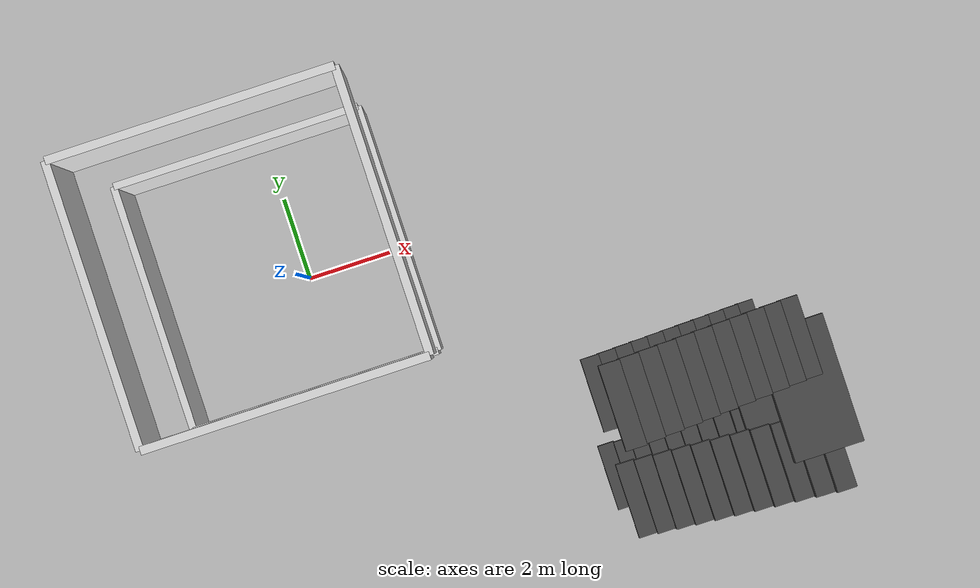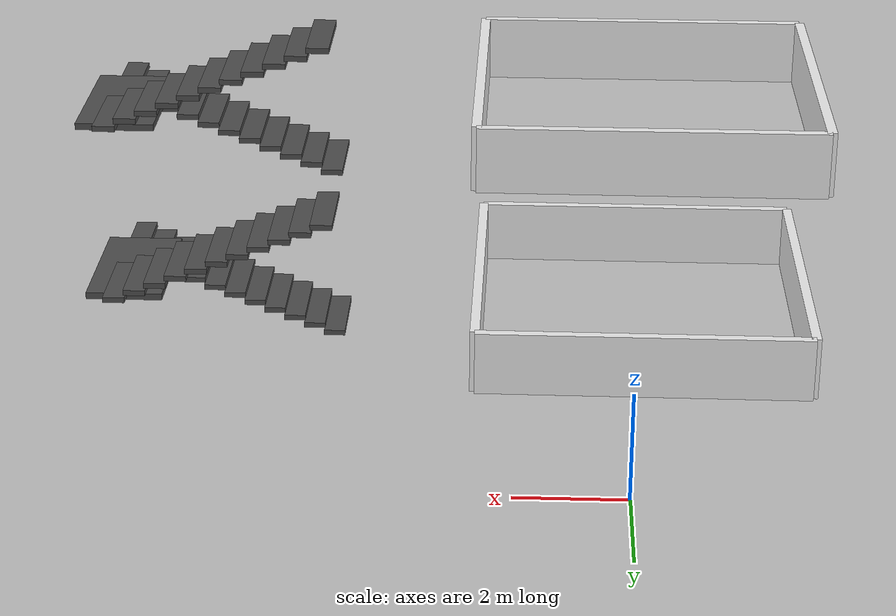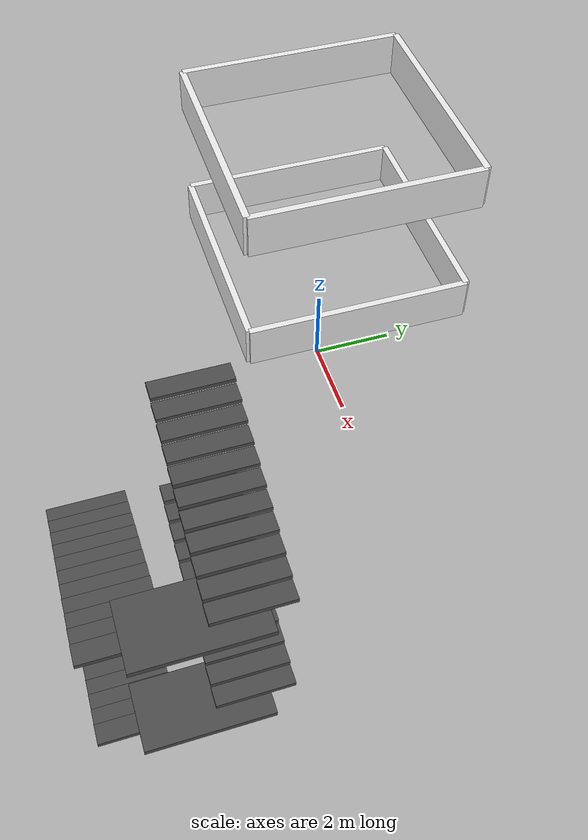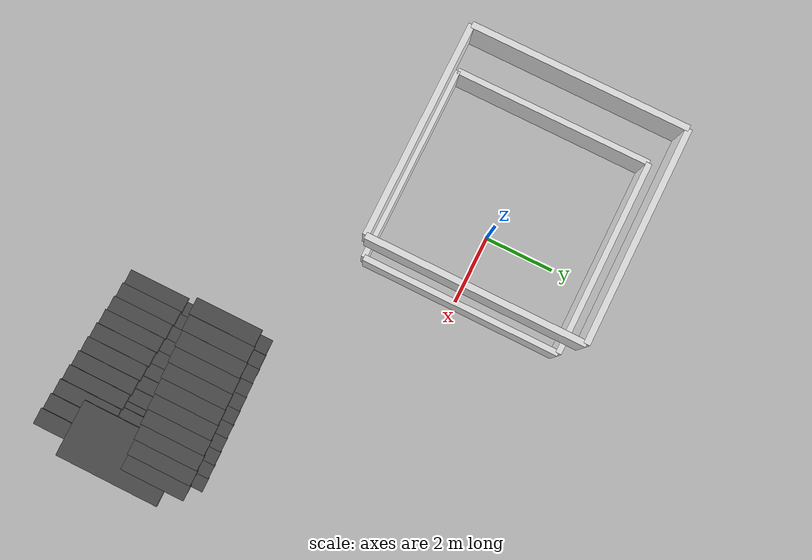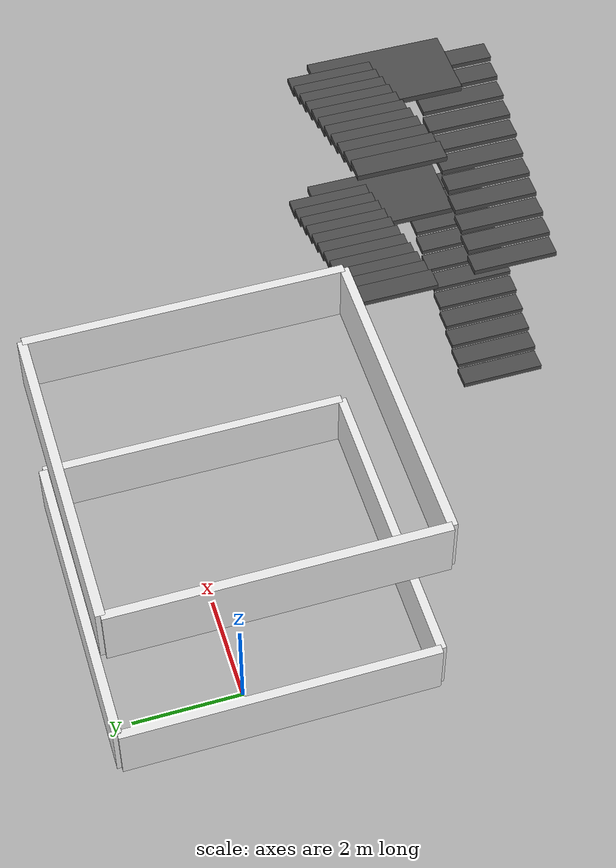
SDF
<sdf version="1.7">
 <world name="default">
  <model name="building_core">
   <static>1</static>
   <link name="pL2N">
    <pose>0 2.575 3.8 0 0 0</pose>
    <collision name="c"><geometry><box><size>5.15 0.15 1</size></box></geometry></collision>
    <visual name="v">
     <geometry><box><size>5.15 0.15 1</size></box></geometry>
     <material>
      <script><uri>file://media/materials/scripts/Gazebo.material</uri><name>Gazebo/White</name></script>
     </material>
    </visual>
   </link>
   <link name="pL2S">
    <pose>0 -2.575 3.8 0 0 0</pose>
    <collision name="c"><geometry><box><size>5.15 0.15 1</size></box></geometry></collision>
    <visual name="v">
     <geometry><box><size>5.15 0.15 1</size></box></geometry>
     <material>
      <script><uri>file://media/materials/scripts/Gazebo.material</uri><name>Gazebo/White</name></script>
     </material>
    </visual>
   </link>
   <link name="pL2E">
    <pose>2.575 0 3.8 0 0 0</pose>
    <collision name="c"><geometry><box><size>0.15 5.15 1</size></box></geometry></collision>
    <visual name="v">
     <geometry><box><size>0.15 5.15 1</size></box></geometry>
     <material>
      <script><uri>file://media/materials/scripts/Gazebo.material</uri><name>Gazebo/White</name></script>
     </material>
    </visual>
   </link>
   <link name="pL2W">
    <pose>-2.575 0 3.8 0 0 0</pose>
    <collision name="c"><geometry><box><size>0.15 5.15 1</size></box></geometry></collision>
    <visual name="v">
     <geometry><box><size>0.15 5.15 1</size></box></geometry>
     <material>
      <script><uri>file://media/materials/scripts/Gazebo.material</uri><name>Gazebo/White</name></script>
     </material>
    </visual>
   </link>
   <link name="pL3N">
    <pose>0 2.575 7.1 0 0 0</pose>
    <collision name="c"><geometry><box><size>5.15 0.15 1</size></box></geometry></collision>
    <visual name="v">
     <geometry><box><size>5.15 0.15 1</size></box></geometry>
     <material>
      <script><uri>file://media/materials/scripts/Gazebo.material</uri><name>Gazebo/White</name></script>
     </material>
    </visual>
   </link>
   <link name="pL3S">
    <pose>0 -2.575 7.1 0 0 0</pose>
    <collision name="c"><geometry><box><size>5.15 0.15 1</size></box></geometry></collision>
    <visual name="v">
     <geometry><box><size>5.15 0.15 1</size></box></geometry>
     <material>
      <script><uri>file://media/materials/scripts/Gazebo.material</uri><name>Gazebo/White</name></script>
     </material>
    </visual>
   </link>
   <link name="pL3E">
    <pose>2.575 0 7.1 0 0 0</pose>
    <collision name="c"><geometry><box><size>0.15 5.15 1</size></box></geometry></collision>
    <visual name="v">
     <geometry><box><size>0.15 5.15 1</size></box></geometry>
     <material>
      <script><uri>file://media/materials/scripts/Gazebo.material</uri><name>Gazebo/White</name></script>
     </material>
    </visual>
   </link>
   <link name="pL3W">
    <pose>-2.575 0 7.1 0 0 0</pose>
    <collision name="c"><geometry><box><size>0.15 5.15 1</size></box></geometry></collision>
    <visual name="v">
     <geometry><box><size>0.15 5.15 1</size></box></geometry>
     <material>
      <script><uri>file://media/materials/scripts/Gazebo.material</uri><name>Gazebo/White</name></script>
     </material>
    </visual>
   </link>
   <link name="st0a0">
    <pose>5.5 -6.8 0.15 0 0 0</pose>
    <collision name="c"><geometry><box><size>0.4 1.6 0.1</size></box></geometry></collision>
    <visual name="v">
     <geometry><box><size>0.4 1.6 0.1</size></box></geometry>
     <material>
      <script><uri>file://media/materials/scripts/Gazebo.material</uri><name>Gazebo/DarkGrey</name></script>
     </material>
    </visual>
   </link>
   <link name="st0a1">
    <pose>5.88 -6.8 0.3 0 0 0</pose>
    <collision name="c"><geometry><box><size>0.4 1.6 0.1</size></box></geometry></collision>
    <visual name="v">
     <geometry><box><size>0.4 1.6 0.1</size></box></geometry>
     <material>
      <script><uri>file://media/materials/scripts/Gazebo.material</uri><name>Gazebo/DarkGrey</name></script>
     </material>
    </visual>
   </link>
   <link name="st0a2">
    <pose>6.26 -6.8 0.45 0 0 0</pose>
    <collision name="c"><geometry><box><size>0.4 1.6 0.1</size></box></geometry></collision>
    <visual name="v">
     <geometry><box><size>0.4 1.6 0.1</size></box></geometry>
     <material>
      <script><uri>file://media/materials/scripts/Gazebo.material</uri><name>Gazebo/DarkGrey</name></script>
     </material>
    </visual>
   </link>
   <link name="st0a3">
    <pose>6.64 -6.8 0.6 0 0 0</pose>
    <collision name="c"><geometry><box><size>0.4 1.6 0.1</size></box></geometry></collision>
    <visual name="v">
     <geometry><box><size>0.4 1.6 0.1</size></box></geometry>
     <material>
      <script><uri>file://media/materials/scripts/Gazebo.material</uri><name>Gazebo/DarkGrey</name></script>
     </material>
    </visual>
   </link>
   <link name="st0a4">
    <pose>7.02 -6.8 0.75 0 0 0</pose>
    <collision name="c"><geometry><box><size>0.4 1.6 0.1</size></box></geometry></collision>
    <visual name="v">
     <geometry><box><size>0.4 1.6 0.1</size></box></geometry>
     <material>
      <script><uri>file://media/materials/scripts/Gazebo.material</uri><name>Gazebo/DarkGrey</name></script>
     </material>
    </visual>
   </link>
   <link name="st0a5">
    <pose>7.4 -6.8 0.9 0 0 0</pose>
    <collision name="c"><geometry><box><size>0.4 1.6 0.1</size></box></geometry></collision>
    <visual name="v">
     <geometry><box><size>0.4 1.6 0.1</size></box></geometry>
     <material>
      <script><uri>file://media/materials/scripts/Gazebo.material</uri><name>Gazebo/DarkGrey</name></script>
     </material>
    </visual>
   </link>
   <link name="st0a6">
    <pose>7.78 -6.8 1.05 0 0 0</pose>
    <collision name="c"><geometry><box><size>0.4 1.6 0.1</size></box></geometry></collision>
    <visual name="v">
     <geometry><box><size>0.4 1.6 0.1</size></box></geometry>
     <material>
      <script><uri>file://media/materials/scripts/Gazebo.material</uri><name>Gazebo/DarkGrey</name></script>
     </material>
    </visual>
   </link>
   <link name="st0a7">
    <pose>8.16 -6.8 1.2 0 0 0</pose>
    <collision name="c"><geometry><box><size>0.4 1.6 0.1</size></box></geometry></collision>
    <visual name="v">
     <geometry><box><size>0.4 1.6 0.1</size></box></geometry>
     <material>
      <script><uri>file://media/materials/scripts/Gazebo.material</uri><name>Gazebo/DarkGrey</name></script>
     </material>
    </visual>
   </link>
   <link name="st0a8">
    <pose>8.54 -6.8 1.35 0 0 0</pose>
    <collision name="c"><geometry><box><size>0.4 1.6 0.1</size></box></geometry></collision>
    <visual name="v">
     <geometry><box><size>0.4 1.6 0.1</size></box></geometry>
     <material>
      <script><uri>file://media/materials/scripts/Gazebo.material</uri><name>Gazebo/DarkGrey</name></script>
     </material>
    </visual>
   </link>
   <link name="st0a9">
    <pose>8.92 -6.8 1.5 0 0 0</pose>
    <collision name="c"><geometry><box><size>0.4 1.6 0.1</size></box></geometry></collision>
    <visual name="v">
     <geometry><box><size>0.4 1.6 0.1</size></box></geometry>
     <material>
      <script><uri>file://media/materials/scripts/Gazebo.material</uri><name>Gazebo/DarkGrey</name></script>
     </material>
    </visual>
   </link>
   <link name="st0a10">
    <pose>9.3 -6.8 1.65 0 0 0</pose>
    <collision name="c"><geometry><box><size>0.4 1.6 0.1</size></box></geometry></collision>
    <visual name="v">
     <geometry><box><size>0.4 1.6 0.1</size></box></geometry>
     <material>
      <script><uri>file://media/materials/scripts/Gazebo.material</uri><name>Gazebo/DarkGrey</name></script>
     </material>
    </visual>
   </link>
   <link name="st0land">
    <pose>9.2 -5.5 1.65 0 0 0</pose>
    <collision name="c"><geometry><box><size>1.4 2.6 0.12</size></box></geometry></collision>
    <visual name="v">
     <geometry><box><size>1.4 2.6 0.12</size></box></geometry>
     <material>
      <script><uri>file://media/materials/scripts/Gazebo.material</uri><name>Gazebo/DarkGrey</name></script>
     </material>
    </visual>
   </link>
   <link name="st0b0">
    <pose>9.3 -4.5 1.8 0 0 0</pose>
    <collision name="c"><geometry><box><size>0.4 1.6 0.1</size></box></geometry></collision>
    <visual name="v">
     <geometry><box><size>0.4 1.6 0.1</size></box></geometry>
     <material>
      <script><uri>file://media/materials/scripts/Gazebo.material</uri><name>Gazebo/DarkGrey</name></script>
     </material>
    </visual>
   </link>
   <link name="st0b1">
    <pose>8.92 -4.5 1.95 0 0 0</pose>
    <collision name="c"><geometry><box><size>0.4 1.6 0.1</size></box></geometry></collision>
    <visual name="v">
     <geometry><box><size>0.4 1.6 0.1</size></box></geometry>
     <material>
      <script><uri>file://media/materials/scripts/Gazebo.material</uri><name>Gazebo/DarkGrey</name></script>
     </material>
    </visual>
   </link>
   <link name="st0b2">
    <pose>8.54 -4.5 2.1 0 0 0</pose>
    <collision name="c"><geometry><box><size>0.4 1.6 0.1</size></box></geometry></collision>
    <visual name="v">
     <geometry><box><size>0.4 1.6 0.1</size></box></geometry>
     <material>
      <script><uri>file://media/materials/scripts/Gazebo.material</uri><name>Gazebo/DarkGrey</name></script>
     </material>
    </visual>
   </link>
   <link name="st0b3">
    <pose>8.16 -4.5 2.25 0 0 0</pose>
    <collision name="c"><geometry><box><size>0.4 1.6 0.1</size></box></geometry></collision>
    <visual name="v">
     <geometry><box><size>0.4 1.6 0.1</size></box></geometry>
     <material>
      <script><uri>file://media/materials/scripts/Gazebo.material</uri><name>Gazebo/DarkGrey</name></script>
     </material>
    </visual>
   </link>
   <link name="st0b4">
    <pose>7.78 -4.5 2.4 0 0 0</pose>
    <collision name="c"><geometry><box><size>0.4 1.6 0.1</size></box></geometry></collision>
    <visual name="v">
     <geometry><box><size>0.4 1.6 0.1</size></box></geometry>
     <material>
      <script><uri>file://media/materials/scripts/Gazebo.material</uri><name>Gazebo/DarkGrey</name></script>
     </material>
    </visual>
   </link>
   <link name="st0b5">
    <pose>7.4 -4.5 2.55 0 0 0</pose>
    <collision name="c"><geometry><box><size>0.4 1.6 0.1</size></box></geometry></collision>
    <visual name="v">
     <geometry><box><size>0.4 1.6 0.1</size></box></geometry>
     <material>
      <script><uri>file://media/materials/scripts/Gazebo.material</uri><name>Gazebo/DarkGrey</name></script>
     </material>
    </visual>
   </link>
   <link name="st0b6">
    <pose>7.02 -4.5 2.7 0 0 0</pose>
    <collision name="c"><geometry><box><size>0.4 1.6 0.1</size></box></geometry></collision>
    <visual name="v">
     <geometry><box><size>0.4 1.6 0.1</size></box></geometry>
     <material>
      <script><uri>file://media/materials/scripts/Gazebo.material</uri><name>Gazebo/DarkGrey</name></script>
     </material>
    </visual>
   </link>
   <link name="st0b7">
    <pose>6.64 -4.5 2.85 0 0 0</pose>
    <collision name="c"><geometry><box><size>0.4 1.6 0.1</size></box></geometry></collision>
    <visual name="v">
     <geometry><box><size>0.4 1.6 0.1</size></box></geometry>
     <material>
      <script><uri>file://media/materials/scripts/Gazebo.material</uri><name>Gazebo/DarkGrey</name></script>
     </material>
    </visual>
   </link>
   <link name="st0b8">
    <pose>6.26 -4.5 3 0 0 0</pose>
    <collision name="c"><geometry><box><size>0.4 1.6 0.1</size></box></geometry></collision>
    <visual name="v">
     <geometry><box><size>0.4 1.6 0.1</size></box></geometry>
     <material>
      <script><uri>file://media/materials/scripts/Gazebo.material</uri><name>Gazebo/DarkGrey</name></script>
     </material>
    </visual>
   </link>
   <link name="st0b9">
    <pose>5.88 -4.5 3.15 0 0 0</pose>
    <collision name="c"><geometry><box><size>0.4 1.6 0.1</size></box></geometry></collision>
    <visual name="v">
     <geometry><box><size>0.4 1.6 0.1</size></box></geometry>
     <material>
      <script><uri>file://media/materials/scripts/Gazebo.material</uri><name>Gazebo/DarkGrey</name></script>
     </material>
    </visual>
   </link>
   <link name="st0b10">
    <pose>5.5 -4.5 3.3 0 0 0</pose>
    <collision name="c"><geometry><box><size>0.4 1.6 0.1</size></box></geometry></collision>
    <visual name="v">
     <geometry><box><size>0.4 1.6 0.1</size></box></geometry>
     <material>
      <script><uri>file://media/materials/scripts/Gazebo.material</uri><name>Gazebo/DarkGrey</name></script>
     </material>
    </visual>
   </link>
   <link name="st1a0">
    <pose>5.5 -6.8 3.45 0 0 0</pose>
    <collision name="c"><geometry><box><size>0.4 1.6 0.1</size></box></geometry></collision>
    <visual name="v">
     <geometry><box><size>0.4 1.6 0.1</size></box></geometry>
     <material>
      <script><uri>file://media/materials/scripts/Gazebo.material</uri><name>Gazebo/DarkGrey</name></script>
     </material>
    </visual>
   </link>
   <link name="st1a1">
    <pose>5.88 -6.8 3.6 0 0 0</pose>
    <collision name="c"><geometry><box><size>0.4 1.6 0.1</size></box></geometry></collision>
    <visual name="v">
     <geometry><box><size>0.4 1.6 0.1</size></box></geometry>
     <material>
      <script><uri>file://media/materials/scripts/Gazebo.material</uri><name>Gazebo/DarkGrey</name></script>
     </material>
    </visual>
   </link>
   <link name="st1a2">
    <pose>6.26 -6.8 3.75 0 0 0</pose>
    <collision name="c"><geometry><box><size>0.4 1.6 0.1</size></box></geometry></collision>
    <visual name="v">
     <geometry><box><size>0.4 1.6 0.1</size></box></geometry>
     <material>
      <script><uri>file://media/materials/scripts/Gazebo.material</uri><name>Gazebo/DarkGrey</name></script>
     </material>
    </visual>
   </link>
   <link name="st1a3">
    <pose>6.64 -6.8 3.9 0 0 0</pose>
    <collision name="c"><geometry><box><size>0.4 1.6 0.1</size></box></geometry></collision>
    <visual name="v">
     <geometry><box><size>0.4 1.6 0.1</size></box></geometry>
     <material>
      <script><uri>file://media/materials/scripts/Gazebo.material</uri><name>Gazebo/DarkGrey</name></script>
     </material>
    </visual>
   </link>
   <link name="st1a4">
    <pose>7.02 -6.8 4.05 0 0 0</pose>
    <collision name="c"><geometry><box><size>0.4 1.6 0.1</size></box></geometry></collision>
    <visual name="v">
     <geometry><box><size>0.4 1.6 0.1</size></box></geometry>
     <material>
      <script><uri>file://media/materials/scripts/Gazebo.material</uri><name>Gazebo/DarkGrey</name></script>
     </material>
    </visual>
   </link>
   <link name="st1a5">
    <pose>7.4 -6.8 4.2 0 0 0</pose>
    <collision name="c"><geometry><box><size>0.4 1.6 0.1</size></box></geometry></collision>
    <visual name="v">
     <geometry><box><size>0.4 1.6 0.1</size></box></geometry>
     <material>
      <script><uri>file://media/materials/scripts/Gazebo.material</uri><name>Gazebo/DarkGrey</name></script>
     </material>
    </visual>
   </link>
   <link name="st1a6">
    <pose>7.78 -6.8 4.35 0 0 0</pose>
    <collision name="c"><geometry><box><size>0.4 1.6 0.1</size></box></geometry></collision>
    <visual name="v">
     <geometry><box><size>0.4 1.6 0.1</size></box></geometry>
     <material>
      <script><uri>file://media/materials/scripts/Gazebo.material</uri><name>Gazebo/DarkGrey</name></script>
     </material>
    </visual>
   </link>
   <link name="st1a7">
    <pose>8.16 -6.8 4.5 0 0 0</pose>
    <collision name="c"><geometry><box><size>0.4 1.6 0.1</size></box></geometry></collision>
    <visual name="v">
     <geometry><box><size>0.4 1.6 0.1</size></box></geometry>
     <material>
      <script><uri>file://media/materials/scripts/Gazebo.material</uri><name>Gazebo/DarkGrey</name></script>
     </material>
    </visual>
   </link>
   <link name="st1a8">
    <pose>8.54 -6.8 4.65 0 0 0</pose>
    <collision name="c"><geometry><box><size>0.4 1.6 0.1</size></box></geometry></collision>
    <visual name="v">
     <geometry><box><size>0.4 1.6 0.1</size></box></geometry>
     <material>
      <script><uri>file://media/materials/scripts/Gazebo.material</uri><name>Gazebo/DarkGrey</name></script>
     </material>
    </visual>
   </link>
   <link name="st1a9">
    <pose>8.92 -6.8 4.8 0 0 0</pose>
    <collision name="c"><geometry><box><size>0.4 1.6 0.1</size></box></geometry></collision>
    <visual name="v">
     <geometry><box><size>0.4 1.6 0.1</size></box></geometry>
     <material>
      <script><uri>file://media/materials/scripts/Gazebo.material</uri><name>Gazebo/DarkGrey</name></script>
     </material>
    </visual>
   </link>
   <link name="st1a10">
    <pose>9.3 -6.8 4.95 0 0 0</pose>
    <collision name="c"><geometry><box><size>0.4 1.6 0.1</size></box></geometry></collision>
    <visual name="v">
     <geometry><box><size>0.4 1.6 0.1</size></box></geometry>
     <material>
      <script><uri>file://media/materials/scripts/Gazebo.material</uri><name>Gazebo/DarkGrey</name></script>
     </material>
    </visual>
   </link>
   <link name="st1land">
    <pose>9.2 -5.5 4.95 0 0 0</pose>
    <collision name="c"><geometry><box><size>1.4 2.6 0.12</size></box></geometry></collision>
    <visual name="v">
     <geometry><box><size>1.4 2.6 0.12</size></box></geometry>
     <material>
      <script><uri>file://media/materials/scripts/Gazebo.material</uri><name>Gazebo/DarkGrey</name></script>
     </material>
    </visual>
   </link>
   <link name="st1b0">
    <pose>9.3 -4.5 5.1 0 0 0</pose>
    <collision name="c"><geometry><box><size>0.4 1.6 0.1</size></box></geometry></collision>
    <visual name="v">
     <geometry><box><size>0.4 1.6 0.1</size></box></geometry>
     <material>
      <script><uri>file://media/materials/scripts/Gazebo.material</uri><name>Gazebo/DarkGrey</name></script>
     </material>
    </visual>
   </link>
   <link name="st1b1">
    <pose>8.92 -4.5 5.25 0 0 0</pose>
    <collision name="c"><geometry><box><size>0.4 1.6 0.1</size></box></geometry></collision>
    <visual name="v">
     <geometry><box><size>0.4 1.6 0.1</size></box></geometry>
     <material>
      <script><uri>file://media/materials/scripts/Gazebo.material</uri><name>Gazebo/DarkGrey</name></script>
     </material>
    </visual>
   </link>
   <link name="st1b2">
    <pose>8.54 -4.5 5.4 0 0 0</pose>
    <collision name="c"><geometry><box><size>0.4 1.6 0.1</size></box></geometry></collision>
    <visual name="v">
     <geometry><box><size>0.4 1.6 0.1</size></box></geometry>
     <material>
      <script><uri>file://media/materials/scripts/Gazebo.material</uri><name>Gazebo/DarkGrey</name></script>
     </material>
    </visual>
   </link>
   <link name="st1b3">
    <pose>8.16 -4.5 5.55 0 0 0</pose>
    <collision name="c"><geometry><box><size>0.4 1.6 0.1</size></box></geometry></collision>
    <visual name="v">
     <geometry><box><size>0.4 1.6 0.1</size></box></geometry>
     <material>
      <script><uri>file://media/materials/scripts/Gazebo.material</uri><name>Gazebo/DarkGrey</name></script>
     </material>
    </visual>
   </link>
   <link name="st1b4">
    <pose>7.78 -4.5 5.7 0 0 0</pose>
    <collision name="c"><geometry><box><size>0.4 1.6 0.1</size></box></geometry></collision>
    <visual name="v">
     <geometry><box><size>0.4 1.6 0.1</size></box></geometry>
     <material>
      <script><uri>file://media/materials/scripts/Gazebo.material</uri><name>Gazebo/DarkGrey</name></script>
     </material>
    </visual>
   </link>
   <link name="st1b5">
    <pose>7.4 -4.5 5.85 0 0 0</pose>
    <collision name="c"><geometry><box><size>0.4 1.6 0.1</size></box></geometry></collision>
    <visual name="v">
     <geometry><box><size>0.4 1.6 0.1</size></box></geometry>
     <material>
      <script><uri>file://media/materials/scripts/Gazebo.material</uri><name>Gazebo/DarkGrey</name></script>
     </material>
    </visual>
   </link>
   <link name="st1b6">
    <pose>7.02 -4.5 6 0 0 0</pose>
    <collision name="c"><geometry><box><size>0.4 1.6 0.1</size></box></geometry></collision>
    <visual name="v">
     <geometry><box><size>0.4 1.6 0.1</size></box></geometry>
     <material>
      <script><uri>file://media/materials/scripts/Gazebo.material</uri><name>Gazebo/DarkGrey</name></script>
     </material>
    </visual>
   </link>
   <link name="st1b7">
    <pose>6.64 -4.5 6.15 0 0 0</pose>
    <collision name="c"><geometry><box><size>0.4 1.6 0.1</size></box></geometry></collision>
    <visual name="v">
     <geometry><box><size>0.4 1.6 0.1</size></box></geometry>
     <material>
      <script><uri>file://media/materials/scripts/Gazebo.material</uri><name>Gazebo/DarkGrey</name></script>
     </material>
    </visual>
   </link>
   <link name="st1b8">
    <pose>6.26 -4.5 6.3 0 0 0</pose>
    <collision name="c"><geometry><box><size>0.4 1.6 0.1</size></box></geometry></collision>
    <visual name="v">
     <geometry><box><size>0.4 1.6 0.1</size></box></geometry>
     <material>
      <script><uri>file://media/materials/scripts/Gazebo.material</uri><name>Gazebo/DarkGrey</name></script>
     </material>
    </visual>
   </link>
   <link name="st1b9">
    <pose>5.88 -4.5 6.45 0 0 0</pose>
    <collision name="c"><geometry><box><size>0.4 1.6 0.1</size></box></geometry></collision>
    <visual name="v">
     <geometry><box><size>0.4 1.6 0.1</size></box></geometry>
     <material>
      <script><uri>file://media/materials/scripts/Gazebo.material</uri><name>Gazebo/DarkGrey</name></script>
     </material>
    </visual>
   </link>
   <link name="st1b10">
    <pose>5.5 -4.5 6.6 0 0 0</pose>
    <collision name="c"><geometry><box><size>0.4 1.6 0.1</size></box></geometry></collision>
    <visual name="v">
     <geometry><box><size>0.4 1.6 0.1</size></box></geometry>
     <material>
      <script><uri>file://media/materials/scripts/Gazebo.material</uri><name>Gazebo/DarkGrey</name></script>
     </material>
    </visual>
   </link>
  </model>
 </world>
</sdf>
